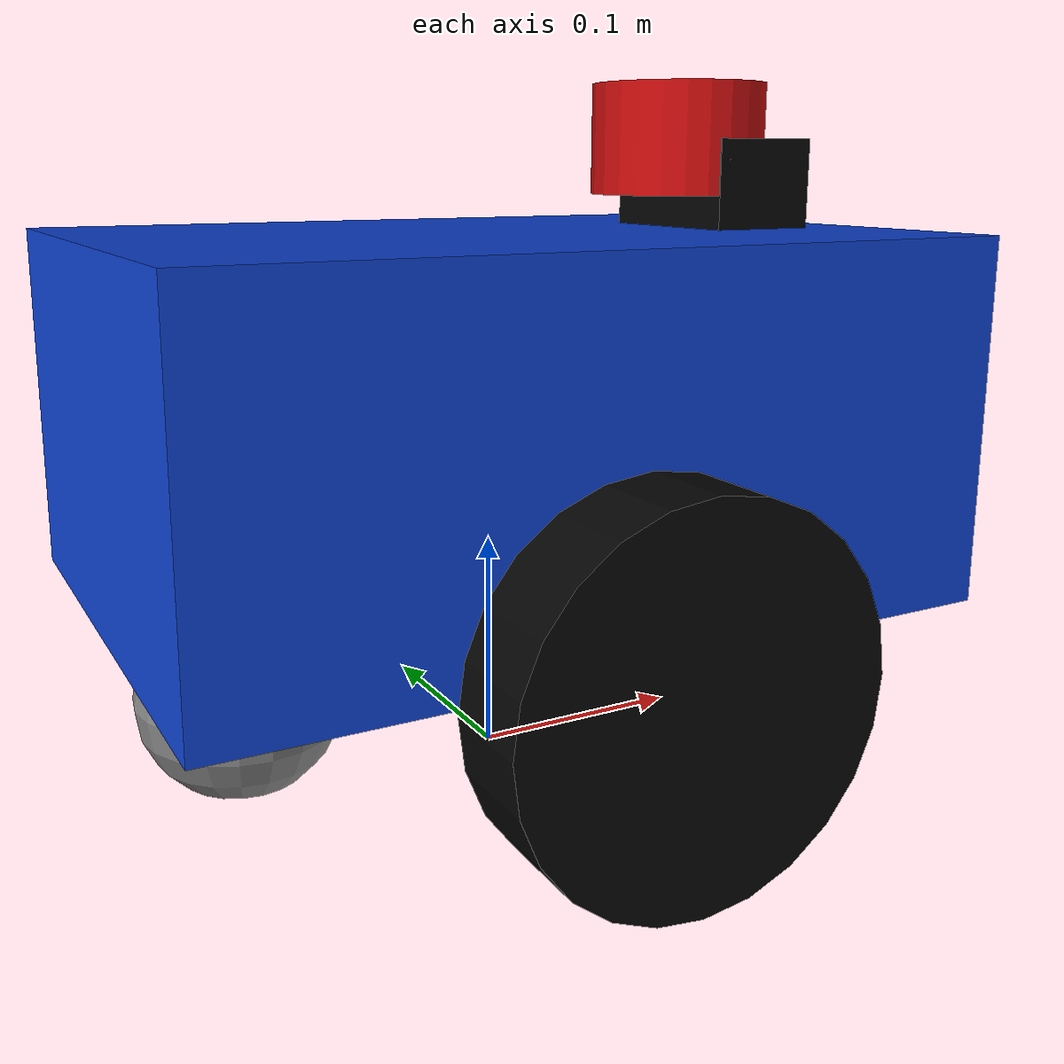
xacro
<?xml version="1.0"?>
<robot xmlns:xacro="http://www.ros.org/wiki/xacro" name="gobot">
  <xacro:arg name="use_sim" default="true"/>
  <xacro:property name="wheel_radius" value="0.08"/>
  <material name="blue"><color rgba="0.05 0.25 0.8 1"/></material>
  <material name="black"><color rgba="0.02 0.02 0.02 1"/></material>
  <material name="grey"><color rgba="0.5 0.5 0.5 1"/></material>
  <material name="red"><color rgba="0.8 0.05 0.05 1"/></material>

  <link name="base_footprint"/>
  <link name="base_link">
    <visual><origin xyz="0 0 0.08"/><geometry><box size="0.35 0.25 0.16"/></geometry><material name="blue"/></visual>
    <collision><origin xyz="0 0 0.08"/><geometry><box size="0.35 0.25 0.16"/></geometry></collision>
    <inertial><origin xyz="0 0 0.08"/><mass value="2.0"/><inertia ixx="0.0111" ixy="0" ixz="0" iyy="0.0211" iyz="0" izz="0.0167"/></inertial>
  </link>
  <joint name="base_joint" type="fixed"><parent link="base_footprint"/><child link="base_link"/><origin xyz="0 0 ${wheel_radius}"/></joint>

  <link name="left_wheel"><visual><origin rpy="1.5708 0 0"/><geometry><cylinder radius="${wheel_radius}" length="0.04"/></geometry><material name="black"/></visual><collision><origin rpy="1.5708 0 0"/><geometry><cylinder radius="${wheel_radius}" length="0.04"/></geometry></collision><inertial><mass value="0.3"/><inertia ixx="0.0006" ixy="0" ixz="0" iyy="0.0006" iyz="0" izz="0.00096"/></inertial></link>
  <joint name="left_wheel_joint" type="continuous"><parent link="base_link"/><child link="left_wheel"/><origin xyz="0 0.15 0"/><axis xyz="0 1 0"/><dynamics damping="0.1" friction="0.02"/></joint>
  <link name="right_wheel"><visual><origin rpy="1.5708 0 0"/><geometry><cylinder radius="${wheel_radius}" length="0.04"/></geometry><material name="black"/></visual><collision><origin rpy="1.5708 0 0"/><geometry><cylinder radius="${wheel_radius}" length="0.04"/></geometry></collision><inertial><mass value="0.3"/><inertia ixx="0.0006" ixy="0" ixz="0" iyy="0.0006" iyz="0" izz="0.00096"/></inertial></link>
  <joint name="right_wheel_joint" type="continuous"><parent link="base_link"/><child link="right_wheel"/><origin xyz="0 -0.15 0"/><axis xyz="0 1 0"/><dynamics damping="0.1" friction="0.02"/></joint>
  <link name="caster_wheel"><visual><geometry><sphere radius="0.045"/></geometry><material name="grey"/></visual><collision><geometry><sphere radius="0.045"/></geometry></collision><inertial><mass value="0.1"/><inertia ixx="0.00008" ixy="0" ixz="0" iyy="0.00008" iyz="0" izz="0.00008"/></inertial></link>
  <joint name="caster_joint" type="fixed"><parent link="base_link"/><child link="caster_wheel"/><origin xyz="-0.12 0 -0.032"/></joint>

  <link name="lidar_link"><visual><geometry><cylinder radius="0.04" length="0.05"/></geometry><material name="red"/></visual><collision><geometry><cylinder radius="0.04" length="0.05"/></geometry></collision><inertial><mass value="0.05"/><inertia ixx="0.00003" ixy="0" ixz="0" iyy="0.00003" iyz="0" izz="0.00004"/></inertial></link>
  <joint name="lidar_joint" type="fixed"><parent link="base_link"/><child link="lidar_link"/><origin xyz="0.10 0 0.20"/></joint>
  <link name="camera_link"><visual><geometry><box size="0.05 0.08 0.04"/></geometry><material name="black"/></visual><inertial><mass value="0.05"/><inertia ixx="0.00001" ixy="0" ixz="0" iyy="0.00001" iyz="0" izz="0.00001"/></inertial></link>
  <joint name="camera_joint" type="fixed"><parent link="base_link"/><child link="camera_link"/><origin xyz="0.12 0 0.18"/></joint>
  <link name="camera_optical_frame"/><joint name="camera_optical_joint" type="fixed"><parent link="camera_link"/><child link="camera_optical_frame"/><origin rpy="-1.5708 0 -1.5708"/></joint>

  <gazebo reference="left_wheel"><mu1>0.9</mu1><mu2>0.9</mu2></gazebo>
  <gazebo reference="right_wheel"><mu1>0.9</mu1><mu2>0.9</mu2></gazebo>
  <gazebo>
    <plugin name="diff_drive" filename="libgazebo_ros_diff_drive.so">
      <ros><remapping>cmd_vel:=/cmd_vel</remapping><remapping>odom:=/odom</remapping></ros>
      <update_rate>50</update_rate><left_joint>left_wheel_joint</left_joint><right_joint>right_wheel_joint</right_joint>
      <wheel_separation>0.30</wheel_separation><wheel_diameter>0.16</wheel_diameter>
      <max_wheel_torque>5.0</max_wheel_torque><max_wheel_acceleration>2.0</max_wheel_acceleration>
      <publish_odom>true</publish_odom><publish_odom_tf>true</publish_odom_tf><publish_wheel_tf>true</publish_wheel_tf>
      <odometry_frame>odom</odometry_frame><robot_base_frame>base_footprint</robot_base_frame>
    </plugin>
  </gazebo>
  <gazebo reference="lidar_link">
    <sensor name="lidar" type="ray"><always_on>true</always_on><update_rate>10</update_rate><visualize>false</visualize>
      <ray><scan><horizontal><samples>360</samples><resolution>1</resolution><min_angle>-3.14159</min_angle><max_angle>3.14159</max_angle></horizontal></scan><range><min>0.12</min><max>10.0</max><resolution>0.01</resolution></range></ray>
      <plugin name="lidar_controller" filename="libgazebo_ros_ray_sensor.so"><ros><remapping>~/out:=/scan</remapping></ros><output_type>sensor_msgs/LaserScan</output_type><frame_name>lidar_link</frame_name></plugin>
    </sensor>
  </gazebo>
  <gazebo reference="camera_link">
    <sensor name="camera" type="camera"><always_on>true</always_on><update_rate>15</update_rate><visualize>false</visualize>
      <camera><horizontal_fov>1.047</horizontal_fov><image><width>640</width><height>480</height><format>R8G8B8</format></image><clip><near>0.05</near><far>20.0</far></clip></camera>
      <plugin name="camera_controller" filename="libgazebo_ros_camera.so"><ros><remapping>image_raw:=/camera/image</remapping><remapping>camera_info:=/camera/camera_info</remapping></ros><camera_name>camera</camera_name><frame_name>camera_optical_frame</frame_name></plugin>
    </sensor>
  </gazebo>
</robot>
